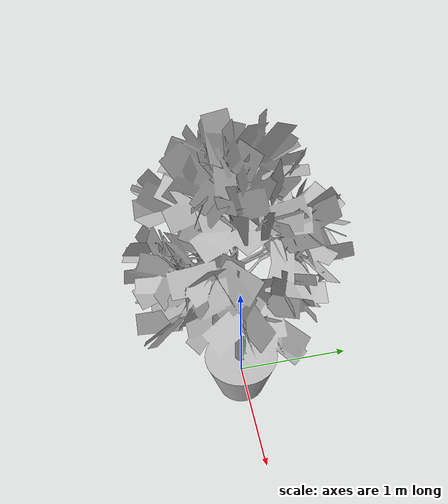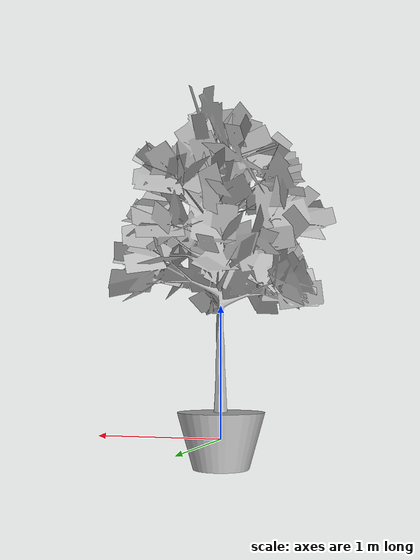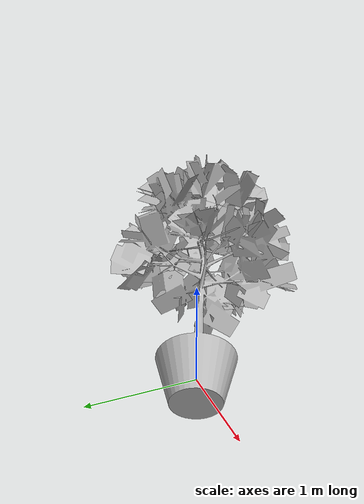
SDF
<?xml version= "1.0" ?>
<sdf version= "1.5">
	<model name= "maple_tree">
		<static>true</static>
		<link name= "tree" >
			<visual name= "visual">
				<geometry>
					<mesh>
						<uri>model://maple_tree/meshes/potted_maple_tree17.dae</uri>
					</mesh>
				</geometry>
			</visual>
		</link>
	</model>
</sdf>
